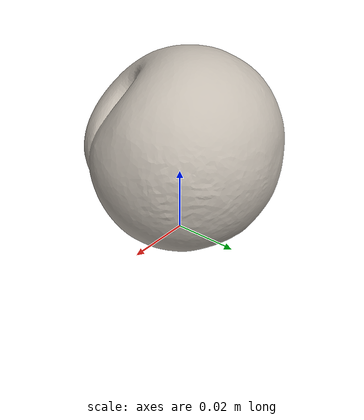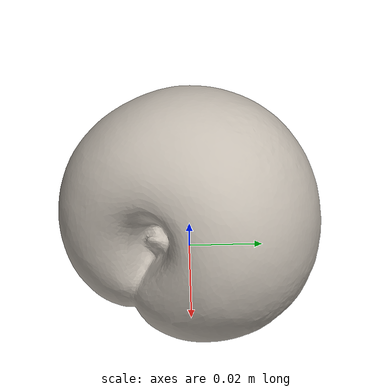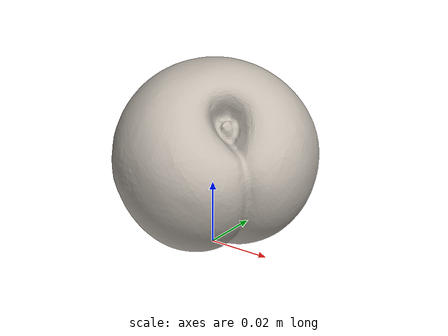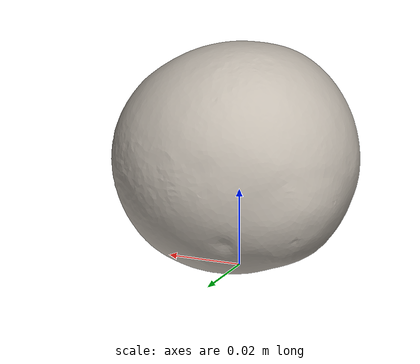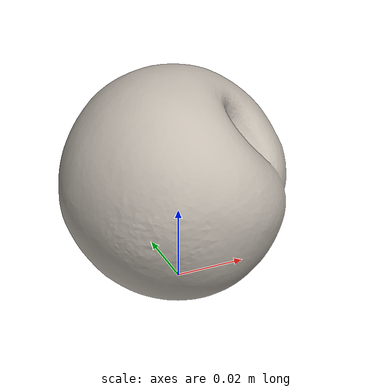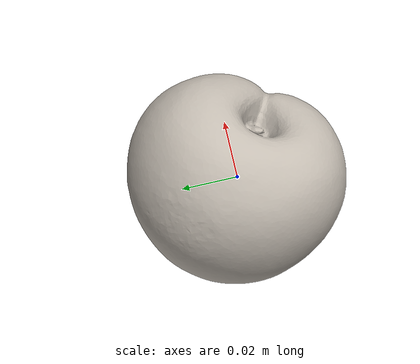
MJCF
<mujoco model="peach">
  <compiler angle="radian" meshdir="." texturedir="."/>
  <asset>
    <mesh name="peach_mesh" file="peach.obj" maxhullvert="64"/>
    <texture name="peach_tex" type="2d" file="peach.png"/>
    <material name="peach_mat" texture="peach_tex" specular="0.25" shininess="0.3"/>
  </asset>
  <worldbody>
    <body name="peach" pos="0 0 0">
      <inertial pos="-0.000776825 0.001151 0.0284746" quat="0.688312 0.545269 -0.474194 0.0636325" mass="0.13" diaginertia="5.0881e-05 4.92882e-05 4.54533e-05"/>
      <site name="peach_center" pos="0 0 0" size="0.005" rgba="0 0 0 0"/>
      <geom name="peach_vis0" type="mesh" mesh="peach_mesh" pos="0.0142705 -0.005633 0.000215" material="peach_mat" group="2" contype="0" conaffinity="0"/>
      <geom name="peach_col1" type="mesh" mesh="peach_mesh" pos="0.0142705 -0.005633 0.000215" rgba="0.5 0.5 0.5 0.3" group="3" condim="6" friction="1 0.02 0.004"/>
    </body>
  </worldbody>
</mujoco>
